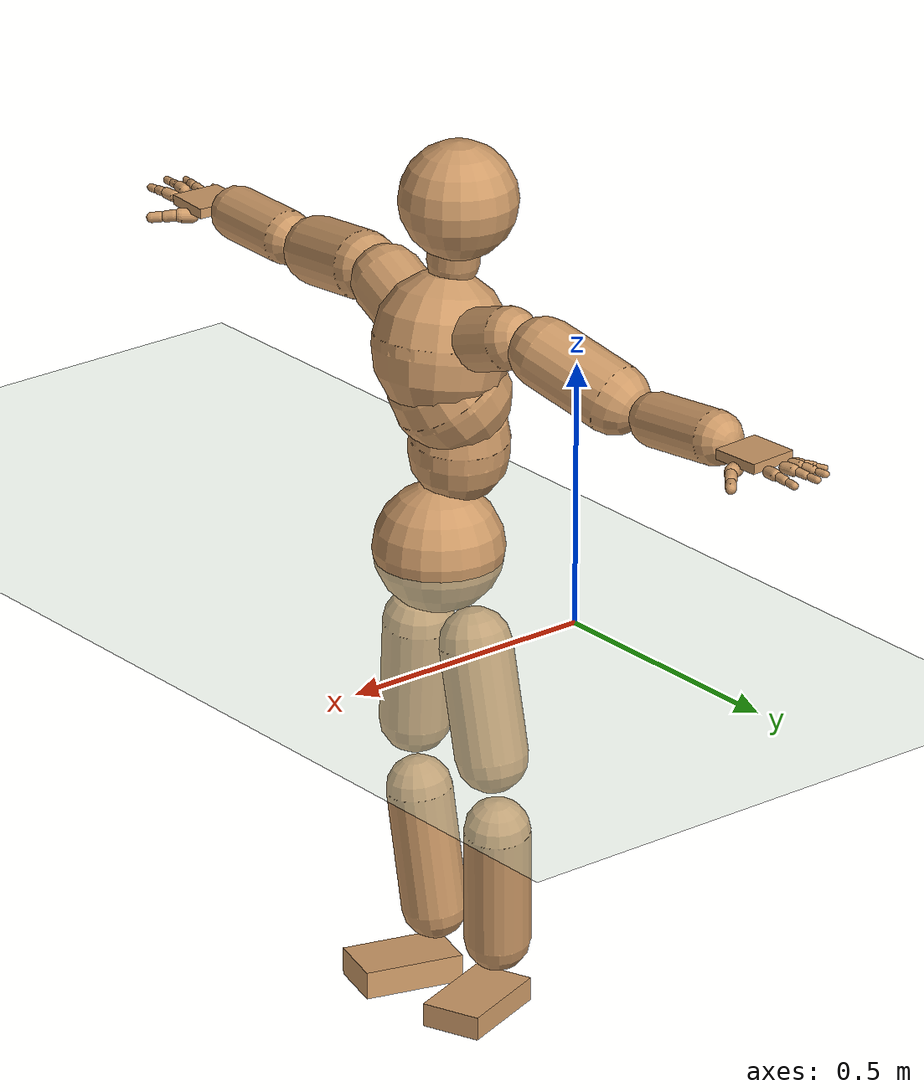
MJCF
<mujoco model="humanoid">
  <compiler coordinate="local" angle="radian"/>
  <default>
    <joint damping="0.0" armature="0.01" stiffness="0.0" limited="true"/>
    <geom conaffinity="1" condim="3" contype="7" margin="0.001" rgba="0.8 0.6 .4 1"/>
  </default>
  <asset>
    <texture type="skybox" builtin="gradient" rgb1=".4 .5 .6" rgb2="0 0 0" width="100" height="100"/>
    <texture builtin="flat" height="1278" mark="cross" markrgb="1 1 1" name="texgeom" random="0.01" rgb1="0.8 0.6 0.4" rgb2="0.8 0.6 0.4" type="cube" width="127"/>
    <texture builtin="checker" height="100" name="texplane" rgb1="0 0 0" rgb2="0.8 0.8 0.8" type="2d" width="100"/>
    <material name="MatPlane" reflectance="0.5" shininess="1" specular="1" texrepeat="60 60" texture="texplane"/>
    <material name="geom" texture="texgeom" texuniform="true"/>
  </asset>
  <worldbody>
    <light cutoff="100" diffuse="1 1 1" dir="-0 0 -1.3" directional="true" exponent="1" pos="0 0 1.3" specular=".1 .1 .1"/>
    <geom conaffinity="1" condim="3" name="floor" pos="0 0 0" rgba="0.8 0.9 0.8 1" size="100 100 .2" type="plane" material="MatPlane"/>
    <body name="Pelvis" pos="0.0019 -0.3915 0.019">
      <freejoint name="Pelvis"/>
      <geom type="sphere" contype="1" conaffinity="1" density="500" size="0.1237" pos="0.0000 0.0000 0.0000" name="Pelvis"/>
      <body name="L_Hip" pos="-0.02 0.0669 -0.1015">
        <joint name="L_Hip_x" type="hinge" pos="0 0 0" axis="1 0 0" stiffness="800" damping="80" armature="0.02" range="-180.0000 180.0000"/>
        <joint name="L_Hip_y" type="hinge" pos="0 0 0" axis="0 1 0" stiffness="800" damping="80" armature="0.02" range="-180.0000 180.0000"/>
        <joint name="L_Hip_z" type="hinge" pos="0 0 0" axis="0 0 1" stiffness="800" damping="80" armature="0.02" range="-180.0000 180.0000"/>
        <geom type="capsule" contype="1" conaffinity="1" density="500" fromto="-0.0023 0.0129 -0.0723 -0.0091 0.0518 -0.2891" size="0.0686" name="L_Hip"/>
        <body name="L_Knee" pos="-0.0113 0.0647 -0.3614">
          <joint name="L_Knee_x" type="hinge" pos="0 0 0" axis="1 0 0" stiffness="800" damping="80" armature="0.02" range="-180.0000 180.0000"/>
          <joint name="L_Knee_y" type="hinge" pos="0 0 0" axis="0 1 0" stiffness="800" damping="80" armature="0.02" range="-180.0000 180.0000"/>
          <joint name="L_Knee_z" type="hinge" pos="0 0 0" axis="0 0 1" stiffness="800" damping="80" armature="0.02" range="-180.0000 180.0000"/>
          <geom type="capsule" contype="1" conaffinity="1" density="500" fromto="-0.0090 -0.0107 -0.0805 -0.0361 -0.0430 -0.3222" size="0.063" name="L_Knee"/>
          <body name="L_Ankle" pos="-0.0452 -0.0537 -0.4027">
            <joint name="L_Ankle_x" type="hinge" pos="0 0 0" axis="1 0 0" stiffness="800" damping="80" armature="0.02" range="-180.0000 180.0000"/>
            <joint name="L_Ankle_y" type="hinge" pos="0 0 0" axis="0 1 0" stiffness="800" damping="80" armature="0.02" range="-180.0000 180.0000"/>
            <joint name="L_Ankle_z" type="hinge" pos="0 0 0" axis="0 0 1" stiffness="800" damping="80" armature="0.02" range="-180.0000 180.0000"/>
            <geom type="box" contype="1" conaffinity="1" density="500" pos="0.0695 0.0260 -0.0295" size="0.0974 0.0585 0.0229" quat="0.9841 0.0000 0.0000 0.1778" name="L_Ankle"/>
            <body name="L_Toe" pos="0.1389 0.0519 -0.0591">
              <joint name="L_Toe_x" type="hinge" pos="0 0 0" axis="1 0 0" stiffness="500" damping="50" armature="0.02" range="-180.0000 180.0000"/>
              <joint name="L_Toe_y" type="hinge" pos="0 0 0" axis="0 1 0" stiffness="500" damping="50" armature="0.02" range="-180.0000 180.0000"/>
              <joint name="L_Toe_z" type="hinge" pos="0 0 0" axis="0 0 1" stiffness="500" damping="50" armature="0.02" range="-180.0000 180.0000"/>
              <geom type="box" contype="1" conaffinity="1" density="500" pos="0.0000 0.0000 0.0300" size="0.0011 0.0027 0.0012" quat="0.9834 0.0000 0.0000 0.1817" name="L_Toe"/>
            </body>
          </body>
        </body>
      </body>
      <body name="R_Hip" pos="-0.0111 -0.0692 -0.1129">
        <joint name="R_Hip_x" type="hinge" pos="0 0 0" axis="1 0 0" stiffness="800" damping="80" armature="0.02" range="-180.0000 180.0000"/>
        <joint name="R_Hip_y" type="hinge" pos="0 0 0" axis="0 1 0" stiffness="800" damping="80" armature="0.02" range="-180.0000 180.0000"/>
        <joint name="R_Hip_z" type="hinge" pos="0 0 0" axis="0 0 1" stiffness="800" damping="80" armature="0.02" range="-180.0000 180.0000"/>
        <geom type="capsule" contype="1" conaffinity="1" density="500" fromto="-0.0041 -0.0092 -0.0690 -0.0165 -0.0367 -0.2761" size="0.0686" name="R_Hip"/>
        <body name="R_Knee" pos="-0.0207 -0.0459 -0.3451">
          <joint name="R_Knee_x" type="hinge" pos="0 0 0" axis="1 0 0" stiffness="800" damping="80" armature="0.02" range="-180.0000 180.0000"/>
          <joint name="R_Knee_y" type="hinge" pos="0 0 0" axis="0 1 0" stiffness="800" damping="80" armature="0.02" range="-180.0000 180.0000"/>
          <joint name="R_Knee_z" type="hinge" pos="0 0 0" axis="0 0 1" stiffness="800" damping="80" armature="0.02" range="-180.0000 180.0000"/>
          <geom type="capsule" contype="1" conaffinity="1" density="500" fromto="-0.0089 0.0039 -0.0830 -0.0355 0.0156 -0.3319" size="0.0631" name="R_Knee"/>
          <body name="R_Ankle" pos="-0.0444 0.0195 -0.4149">
            <joint name="R_Ankle_x" type="hinge" pos="0 0 0" axis="1 0 0" stiffness="800" damping="80" armature="0.02" range="-180.0000 180.0000"/>
            <joint name="R_Ankle_y" type="hinge" pos="0 0 0" axis="0 1 0" stiffness="800" damping="80" armature="0.02" range="-180.0000 180.0000"/>
            <joint name="R_Ankle_z" type="hinge" pos="0 0 0" axis="0 0 1" stiffness="800" damping="80" armature="0.02" range="-180.0000 180.0000"/>
            <geom type="box" contype="1" conaffinity="1" density="500" pos="0.0731 -0.0203 -0.0288" size="0.0974 0.0585 0.027" quat="0.9908 0.0000 0.0000 -0.1350" name="R_Ankle"/>
            <body name="R_Toe" pos="0.1461 -0.0406 -0.0575">
              <joint name="R_Toe_x" type="hinge" pos="0 0 0" axis="1 0 0" stiffness="500" damping="50" armature="0.02" range="-180.0000 180.0000"/>
              <joint name="R_Toe_y" type="hinge" pos="0 0 0" axis="0 1 0" stiffness="500" damping="50" armature="0.02" range="-180.0000 180.0000"/>
              <joint name="R_Toe_z" type="hinge" pos="0 0 0" axis="0 0 1" stiffness="500" damping="50" armature="0.02" range="-180.0000 180.0000"/>
              <geom type="box" contype="1" conaffinity="1" density="500" pos="0.0000 0.0000 0.0251" size="0.0011 0.0027 0.0012" quat="0.9919 0.0000 0.0000 -0.1270" name="R_Toe"/>
            </body>
          </body>
        </body>
      </body>
      <body name="Torso" pos="-0.0463 -0.0017 0.1141">
        <joint name="Torso_x" type="hinge" pos="0 0 0" axis="1 0 0" stiffness="1000" damping="100" armature="0.02" range="-180.0000 180.0000"/>
        <joint name="Torso_y" type="hinge" pos="0 0 0" axis="0 1 0" stiffness="1000" damping="100" armature="0.02" range="-180.0000 180.0000"/>
        <joint name="Torso_z" type="hinge" pos="0 0 0" axis="0 0 1" stiffness="1000" damping="100" armature="0.02" range="-180.0000 180.0000"/>
        <geom type="capsule" contype="1" conaffinity="1" density="500" fromto="0.0050 0.0107 0.0963 0.0033 0.0071 0.0642" size="0.0945" name="Torso"/>
        <body name="Spine" pos="0.0083 0.0178 0.1606">
          <joint name="Spine_x" type="hinge" pos="0 0 0" axis="1 0 0" stiffness="1000" damping="100" armature="0.02" range="-180.0000 180.0000"/>
          <joint name="Spine_y" type="hinge" pos="0 0 0" axis="0 1 0" stiffness="1000" damping="100" armature="0.02" range="-180.0000 180.0000"/>
          <joint name="Spine_z" type="hinge" pos="0 0 0" axis="0 0 1" stiffness="1000" damping="100" armature="0.02" range="-180.0000 180.0000"/>
          <geom type="capsule" contype="1" conaffinity="1" density="500" fromto="0.0236 -0.0083 0.0372 0.0157 -0.0055 0.0248" size="0.1114" name="Spine"/>
          <body name="Chest" pos="0.0393 -0.0138 0.062">
            <joint name="Chest_x" type="hinge" pos="0 0 0" axis="1 0 0" stiffness="1000" damping="100" armature="0.02" range="-180.0000 180.0000"/>
            <joint name="Chest_y" type="hinge" pos="0 0 0" axis="0 1 0" stiffness="1000" damping="100" armature="0.02" range="-180.0000 180.0000"/>
            <joint name="Chest_z" type="hinge" pos="0 0 0" axis="0 0 1" stiffness="1000" damping="100" armature="0.02" range="-180.0000 180.0000"/>
            <geom type="capsule" contype="1" conaffinity="1" density="500" fromto="-0.0116 -0.0050 0.0687 -0.0077 -0.0033 0.0458" size="0.1279" name="Chest"/>
            <body name="Neck" pos="-0.0424 -0.0146 0.1789">
              <joint name="Neck_x" type="hinge" pos="0 0 0" axis="1 0 0" stiffness="500" damping="50" armature="0.02" range="-180.0000 180.0000"/>
              <joint name="Neck_y" type="hinge" pos="0 0 0" axis="0 1 0" stiffness="500" damping="50" armature="0.02" range="-180.0000 180.0000"/>
              <joint name="Neck_z" type="hinge" pos="0 0 0" axis="0 0 1" stiffness="500" damping="50" armature="0.02" range="-180.0000 180.0000"/>
              <geom type="capsule" contype="1" conaffinity="1" density="500" fromto="0.0014 0.0056 0.0315 0.0055 0.0224 0.1262" size="0.049" name="Neck"/>
              <body name="Head" pos="0.0069 0.028 0.1577">
                <joint name="Head_x" type="hinge" pos="0 0 0" axis="1 0 0" stiffness="500" damping="50" armature="0.02" range="-180.0000 180.0000"/>
                <joint name="Head_y" type="hinge" pos="0 0 0" axis="0 1 0" stiffness="500" damping="50" armature="0.02" range="-180.0000 180.0000"/>
                <joint name="Head_z" type="hinge" pos="0 0 0" axis="0 0 1" stiffness="500" damping="50" armature="0.02" range="-180.0000 180.0000"/>
                <geom type="sphere" contype="1" conaffinity="1" density="500" size="0.1107" pos="0.0000 0.0000 0.0000" name="Head"/>
              </body>
            </body>
            <body name="L_Thorax" pos="-0.0073 0.048 0.0816">
              <joint name="L_Thorax_x" type="hinge" pos="0 0 0" axis="1 0 0" stiffness="500" damping="50" armature="0.02" range="-180.0000 180.0000"/>
              <joint name="L_Thorax_y" type="hinge" pos="0 0 0" axis="0 1 0" stiffness="500" damping="50" armature="0.02" range="-180.0000 180.0000"/>
              <joint name="L_Thorax_z" type="hinge" pos="0 0 0" axis="0 0 1" stiffness="500" damping="50" armature="0.02" range="-180.0000 180.0000"/>
              <geom type="capsule" contype="1" conaffinity="1" density="500" fromto="-0.0027 0.0329 0.0108 -0.0107 0.1314 0.0432" size="0.0591" name="L_Thorax"/>
              <body name="L_Shoulder" pos="-0.0134 0.1643 0.0539">
                <joint name="L_Shoulder_x" type="hinge" pos="0 0 0" axis="1 0 0" stiffness="500" damping="50" armature="0.02" range="-180.0000 180.0000"/>
                <joint name="L_Shoulder_y" type="hinge" pos="0 0 0" axis="0 1 0" stiffness="500" damping="50" armature="0.02" range="-180.0000 180.0000"/>
                <joint name="L_Shoulder_z" type="hinge" pos="0 0 0" axis="0 0 1" stiffness="500" damping="50" armature="0.02" range="-180.0000 180.0000"/>
                <geom type="capsule" contype="1" conaffinity="1" density="500" fromto="-0.0118 0.0508 -0.0162 -0.0471 0.2033 -0.0646" size="0.0663" name="L_Shoulder"/>
                <body name="L_Elbow" pos="-0.0589 0.2541 -0.0808">
                  <joint name="L_Elbow_x" type="hinge" pos="0 0 0" axis="1 0 0" stiffness="500" damping="50" armature="0.02" range="-720.0000 720.0000"/>
                  <joint name="L_Elbow_y" type="hinge" pos="0 0 0" axis="0 1 0" stiffness="500" damping="50" armature="0.02" range="-720.0000 720.0000"/>
                  <joint name="L_Elbow_z" type="hinge" pos="0 0 0" axis="0 0 1" stiffness="500" damping="50" armature="0.02" range="-720.0000 720.0000"/>
                  <geom type="capsule" contype="1" conaffinity="1" density="500" fromto="0.0011 0.0541 0.0065 0.0045 0.2164 0.0260" size="0.0508" name="L_Elbow"/>
                  <body name="L_Wrist" pos="0.0057 0.2705 0.0325">
                    <joint name="L_Wrist_x" type="hinge" pos="0 0 0" axis="1 0 0" stiffness="300" damping="30" armature="0.02" range="-180.0000 180.0000"/>
                    <joint name="L_Wrist_y" type="hinge" pos="0 0 0" axis="0 1 0" stiffness="300" damping="30" armature="0.02" range="-180.0000 180.0000"/>
                    <joint name="L_Wrist_z" type="hinge" pos="0 0 0" axis="0 0 1" stiffness="300" damping="30" armature="0.02" range="-180.0000 180.0000"/>
                    <geom type="box" contype="1" conaffinity="1" density="500" pos="-0.0032 0.0476 -0.0061" size="0.0475 0.0478 0.0095" quat="0.7307 0.0000 0.0000 -0.6827" name="L_Wrist"/>
                    <body name="L_Index1" pos="0.024 0.112 -0.0086">
                      <joint name="L_Index1_x" type="hinge" pos="0 0 0" axis="1 0 0" stiffness="100" damping="10" armature="0.02" range="-180.0000 180.0000"/>
                      <joint name="L_Index1_y" type="hinge" pos="0 0 0" axis="0 1 0" stiffness="100" damping="10" armature="0.02" range="-180.0000 180.0000"/>
                      <joint name="L_Index1_z" type="hinge" pos="0 0 0" axis="0 0 1" stiffness="100" damping="10" armature="0.02" range="-180.0000 180.0000"/>
                      <geom type="capsule" contype="1" conaffinity="1" density="500" fromto="0.0008 0.0068 0.0005 0.0031 0.0274 0.0018" size="0.0108" name="L_Index1"/>
                      <body name="L_Index2" pos="0.0038 0.0342 0.0023">
                        <joint name="L_Index2_x" type="hinge" pos="0 0 0" axis="1 0 0" stiffness="100" damping="10" armature="0.02" range="-180.0000 180.0000"/>
                        <joint name="L_Index2_y" type="hinge" pos="0 0 0" axis="0 1 0" stiffness="100" damping="10" armature="0.02" range="-180.0000 180.0000"/>
                        <joint name="L_Index2_z" type="hinge" pos="0 0 0" axis="0 0 1" stiffness="100" damping="10" armature="0.02" range="-180.0000 180.0000"/>
                        <geom type="capsule" contype="1" conaffinity="1" density="500" fromto="-0.0001 0.0048 -0.0005 -0.0003 0.0192 -0.0021" size="0.0085" name="L_Index2"/>
                        <body name="L_Index3" pos="-0.0004 0.024 -0.0027">
                          <joint name="L_Index3_x" type="hinge" pos="0 0 0" axis="1 0 0" stiffness="100" damping="10" armature="0.02" range="-180.0000 180.0000"/>
                          <joint name="L_Index3_y" type="hinge" pos="0 0 0" axis="0 1 0" stiffness="100" damping="10" armature="0.02" range="-180.0000 180.0000"/>
                          <joint name="L_Index3_z" type="hinge" pos="0 0 0" axis="0 0 1" stiffness="100" damping="10" armature="0.02" range="-180.0000 180.0000"/>
                          <geom type="capsule" contype="1" conaffinity="1" density="500" fromto="0.0003 0.0052 -0.0001 0.0013 0.0208 -0.0005" size="0.0072" name="L_Index3"/>
                        </body>
                      </body>
                    </body>
                    <body name="L_Middle1" pos="-0.0043 0.1206 -0.0051">
                      <joint name="L_Middle1_x" type="hinge" pos="0 0 0" axis="1 0 0" stiffness="100" damping="10" armature="0.02" range="-180.0000 180.0000"/>
                      <joint name="L_Middle1_y" type="hinge" pos="0 0 0" axis="0 1 0" stiffness="100" damping="10" armature="0.02" range="-180.0000 180.0000"/>
                      <joint name="L_Middle1_z" type="hinge" pos="0 0 0" axis="0 0 1" stiffness="100" damping="10" armature="0.02" range="-180.0000 180.0000"/>
                      <geom type="capsule" contype="1" conaffinity="1" density="500" fromto="-0.0010 0.0065 0.0002 -0.0039 0.0261 0.0007" size="0.011" name="L_Middle1"/>
                      <body name="L_Middle2" pos="-0.0049 0.0327 0.0009">
                        <joint name="L_Middle2_x" type="hinge" pos="0 0 0" axis="1 0 0" stiffness="100" damping="10" armature="0.02" range="-180.0000 180.0000"/>
                        <joint name="L_Middle2_y" type="hinge" pos="0 0 0" axis="0 1 0" stiffness="100" damping="10" armature="0.02" range="-180.0000 180.0000"/>
                        <joint name="L_Middle2_z" type="hinge" pos="0 0 0" axis="0 0 1" stiffness="100" damping="10" armature="0.02" range="-180.0000 180.0000"/>
                        <geom type="capsule" contype="1" conaffinity="1" density="500" fromto="-0.0009 0.0050 -0.0005 -0.0037 0.0199 -0.0021" size="0.008" name="L_Middle2"/>
                        <body name="L_Middle3" pos="-0.0047 0.0249 -0.0026">
                          <joint name="L_Middle3_x" type="hinge" pos="0 0 0" axis="1 0 0" stiffness="100" damping="10" armature="0.02" range="-180.0000 180.0000"/>
                          <joint name="L_Middle3_y" type="hinge" pos="0 0 0" axis="0 1 0" stiffness="100" damping="10" armature="0.02" range="-180.0000 180.0000"/>
                          <joint name="L_Middle3_z" type="hinge" pos="0 0 0" axis="0 0 1" stiffness="100" damping="10" armature="0.02" range="-180.0000 180.0000"/>
                          <geom type="capsule" contype="1" conaffinity="1" density="500" fromto="-0.0005 0.0054 -0.0001 -0.0021 0.0215 -0.0005" size="0.0069" name="L_Middle3"/>
                        </body>
                      </body>
                    </body>
                    <body name="L_Pinky1" pos="-0.0515 0.0927 -0.0159">
                      <joint name="L_Pinky1_x" type="hinge" pos="0 0 0" axis="1 0 0" stiffness="100" damping="10" armature="0.02" range="-180.0000 180.0000"/>
                      <joint name="L_Pinky1_y" type="hinge" pos="0 0 0" axis="0 1 0" stiffness="100" damping="10" armature="0.02" range="-180.0000 180.0000"/>
                      <joint name="L_Pinky1_z" type="hinge" pos="0 0 0" axis="0 0 1" stiffness="100" damping="10" armature="0.02" range="-180.0000 180.0000"/>
                      <geom type="capsule" contype="1" conaffinity="1" density="500" fromto="-0.0025 0.0036 -0.0004 -0.0101 0.0143 -0.0016" size="0.0076" name="L_Pinky1"/>
                      <body name="L_Pinky2" pos="-0.0126 0.0179 -0.002">
                        <joint name="L_Pinky2_x" type="hinge" pos="0 0 0" axis="1 0 0" stiffness="100" damping="10" armature="0.02" range="-180.0000 180.0000"/>
                        <joint name="L_Pinky2_y" type="hinge" pos="0 0 0" axis="0 1 0" stiffness="100" damping="10" armature="0.02" range="-180.0000 180.0000"/>
                        <joint name="L_Pinky2_z" type="hinge" pos="0 0 0" axis="0 0 1" stiffness="100" damping="10" armature="0.02" range="-180.0000 180.0000"/>
                        <geom type="capsule" contype="1" conaffinity="1" density="500" fromto="-0.0023 0.0035 -0.0005 -0.0092 0.0139 -0.0020" size="0.0072" name="L_Pinky2"/>
                        <body name="L_Pinky3" pos="-0.0115 0.0173 -0.0025">
                          <joint name="L_Pinky3_x" type="hinge" pos="0 0 0" axis="1 0 0" stiffness="100" damping="10" armature="0.02" range="-180.0000 180.0000"/>
                          <joint name="L_Pinky3_y" type="hinge" pos="0 0 0" axis="0 1 0" stiffness="100" damping="10" armature="0.02" range="-180.0000 180.0000"/>
                          <joint name="L_Pinky3_z" type="hinge" pos="0 0 0" axis="0 0 1" stiffness="100" damping="10" armature="0.02" range="-180.0000 180.0000"/>
                          <geom type="capsule" contype="1" conaffinity="1" density="500" fromto="-0.0019 0.0039 -0.0001 -0.0076 0.0155 -0.0004" size="0.0054" name="L_Pinky3"/>
                        </body>
                      </body>
                    </body>
                    <body name="L_Ring1" pos="-0.0325 0.1076 -0.0088">
                      <joint name="L_Ring1_x" type="hinge" pos="0 0 0" axis="1 0 0" stiffness="100" damping="10" armature="0.02" range="-180.0000 180.0000"/>
                      <joint name="L_Ring1_y" type="hinge" pos="0 0 0" axis="0 1 0" stiffness="100" damping="10" armature="0.02" range="-180.0000 180.0000"/>
                      <joint name="L_Ring1_z" type="hinge" pos="0 0 0" axis="0 0 1" stiffness="100" damping="10" armature="0.02" range="-180.0000 180.0000"/>
                      <geom type="capsule" contype="1" conaffinity="1" density="500" fromto="-0.0011 0.0062 0.0002 -0.0042 0.0247 0.0009" size="0.0093" name="L_Ring1"/>
                      <body name="L_Ring2" pos="-0.0053 0.0308 0.0012">
                        <joint name="L_Ring2_x" type="hinge" pos="0 0 0" axis="1 0 0" stiffness="100" damping="10" armature="0.02" range="-180.0000 180.0000"/>
                        <joint name="L_Ring2_y" type="hinge" pos="0 0 0" axis="0 1 0" stiffness="100" damping="10" armature="0.02" range="-180.0000 180.0000"/>
                        <joint name="L_Ring2_z" type="hinge" pos="0 0 0" axis="0 0 1" stiffness="100" damping="10" armature="0.02" range="-180.0000 180.0000"/>
                        <geom type="capsule" contype="1" conaffinity="1" density="500" fromto="-0.0014 0.0049 -0.0005 -0.0057 0.0197 -0.0020" size="0.0085" name="L_Ring2"/>
                        <body name="L_Ring3" pos="-0.0071 0.0246 -0.0025">
                          <joint name="L_Ring3_x" type="hinge" pos="0 0 0" axis="1 0 0" stiffness="100" damping="10" armature="0.02" range="-180.0000 180.0000"/>
                          <joint name="L_Ring3_y" type="hinge" pos="0 0 0" axis="0 1 0" stiffness="100" damping="10" armature="0.02" range="-180.0000 180.0000"/>
                          <joint name="L_Ring3_z" type="hinge" pos="0 0 0" axis="0 0 1" stiffness="100" damping="10" armature="0.02" range="-180.0000 180.0000"/>
                          <geom type="capsule" contype="1" conaffinity="1" density="500" fromto="-0.0010 0.0053 -0.0001 -0.0041 0.0213 -0.0004" size="0.0065" name="L_Ring3"/>
                        </body>
                      </body>
                    </body>
                    <body name="L_Thumb1" pos="0.0319 0.0433 -0.0224">
                      <joint name="L_Thumb1_x" type="hinge" pos="0 0 0" axis="1 0 0" stiffness="100" damping="10" armature="0.02" range="-180.0000 180.0000"/>
                      <joint name="L_Thumb1_y" type="hinge" pos="0 0 0" axis="0 1 0" stiffness="100" damping="10" armature="0.02" range="-180.0000 180.0000"/>
                      <joint name="L_Thumb1_z" type="hinge" pos="0 0 0" axis="0 0 1" stiffness="100" damping="10" armature="0.02" range="-180.0000 180.0000"/>
                      <geom type="capsule" contype="1" conaffinity="1" density="500" fromto="0.0059 0.0035 0.0005 0.0235 0.0139 0.0021" size="0.0143" name="L_Thumb1"/>
                      <body name="L_Thumb2" pos="0.0294 0.0174 0.0026">
                        <joint name="L_Thumb2_x" type="hinge" pos="0 0 0" axis="1 0 0" stiffness="100" damping="10" armature="0.02" range="-180.0000 180.0000"/>
                        <joint name="L_Thumb2_y" type="hinge" pos="0 0 0" axis="0 1 0" stiffness="100" damping="10" armature="0.02" range="-180.0000 180.0000"/>
                        <joint name="L_Thumb2_z" type="hinge" pos="0 0 0" axis="0 0 1" stiffness="100" damping="10" armature="0.02" range="-180.0000 180.0000"/>
                        <geom type="capsule" contype="1" conaffinity="1" density="500" fromto="0.0036 0.0042 -0.0010 0.0142 0.0169 -0.0040" size="0.0111" name="L_Thumb2"/>
                        <body name="L_Thumb3" pos="0.0178 0.0212 -0.005">
                          <joint name="L_Thumb3_x" type="hinge" pos="0 0 0" axis="1 0 0" stiffness="100" damping="10" armature="0.02" range="-180.0000 180.0000"/>
                          <joint name="L_Thumb3_y" type="hinge" pos="0 0 0" axis="0 1 0" stiffness="100" damping="10" armature="0.02" range="-180.0000 180.0000"/>
                          <joint name="L_Thumb3_z" type="hinge" pos="0 0 0" axis="0 0 1" stiffness="100" damping="10" armature="0.02" range="-180.0000 180.0000"/>
                          <geom type="capsule" contype="1" conaffinity="1" density="500" fromto="0.0040 0.0046 -0.0006 0.0158 0.0185 -0.0024" size="0.0099" name="L_Thumb3"/>
                        </body>
                      </body>
                    </body>
                  </body>
                </body>
              </body>
            </body>
            <body name="R_Thorax" pos="-0.0083 -0.0583 0.0828">
              <joint name="R_Thorax_x" type="hinge" pos="0 0 0" axis="1 0 0" stiffness="500" damping="50" armature="0.02" range="-180.0000 180.0000"/>
              <joint name="R_Thorax_y" type="hinge" pos="0 0 0" axis="0 1 0" stiffness="500" damping="50" armature="0.02" range="-180.0000 180.0000"/>
              <joint name="R_Thorax_z" type="hinge" pos="0 0 0" axis="0 0 1" stiffness="500" damping="50" armature="0.02" range="-180.0000 180.0000"/>
              <geom type="capsule" contype="1" conaffinity="1" density="500" fromto="-0.0039 -0.0299 0.0104 -0.0157 -0.1196 0.0418" size="0.0695" name="R_Thorax"/>
              <body name="R_Shoulder" pos="-0.0196 -0.1495 0.0522">
                <joint name="R_Shoulder_x" type="hinge" pos="0 0 0" axis="1 0 0" stiffness="500" damping="50" armature="0.02" range="-180.0000 180.0000"/>
                <joint name="R_Shoulder_y" type="hinge" pos="0 0 0" axis="0 1 0" stiffness="500" damping="50" armature="0.02" range="-180.0000 180.0000"/>
                <joint name="R_Shoulder_z" type="hinge" pos="0 0 0" axis="0 0 1" stiffness="500" damping="50" armature="0.02" range="-180.0000 180.0000"/>
                <geom type="capsule" contype="1" conaffinity="1" density="500" fromto="-0.0071 -0.0550 -0.0087 -0.0285 -0.2200 -0.0346" size="0.0655" name="R_Shoulder"/>
                <body name="R_Elbow" pos="-0.0356 -0.275 -0.0433">
                  <joint name="R_Elbow_x" type="hinge" pos="0 0 0" axis="1 0 0" stiffness="500" damping="50" armature="0.02" range="-720.0000 720.0000"/>
                  <joint name="R_Elbow_y" type="hinge" pos="0 0 0" axis="0 1 0" stiffness="500" damping="50" armature="0.02" range="-720.0000 720.0000"/>
                  <joint name="R_Elbow_z" type="hinge" pos="0 0 0" axis="0 0 1" stiffness="500" damping="50" armature="0.02" range="-720.0000 720.0000"/>
                  <geom type="capsule" contype="1" conaffinity="1" density="500" fromto="-0.0019 -0.0526 -0.0000 -0.0077 -0.2104 -0.0001" size="0.052" name="R_Elbow"/>
                  <body name="R_Wrist" pos="-0.0096 -0.2631 -0.0001">
                    <joint name="R_Wrist_x" type="hinge" pos="0 0 0" axis="1 0 0" stiffness="300" damping="30" armature="0.02" range="-180.0000 180.0000"/>
                    <joint name="R_Wrist_y" type="hinge" pos="0 0 0" axis="0 1 0" stiffness="300" damping="30" armature="0.02" range="-180.0000 180.0000"/>
                    <joint name="R_Wrist_z" type="hinge" pos="0 0 0" axis="0 0 1" stiffness="300" damping="30" armature="0.02" range="-180.0000 180.0000"/>
                    <geom type="box" contype="1" conaffinity="1" density="500" pos="-0.0037 -0.0472 -0.0082" size="0.0475 0.049 0.0097" quat="0.7343 0.0000 0.0000 0.6789" name="R_Wrist"/>
                    <body name="R_Index1" pos="0.0231 -0.1112 -0.0128">
                      <joint name="R_Index1_x" type="hinge" pos="0 0 0" axis="1 0 0" stiffness="100" damping="10" armature="0.02" range="-180.0000 180.0000"/>
                      <joint name="R_Index1_y" type="hinge" pos="0 0 0" axis="0 1 0" stiffness="100" damping="10" armature="0.02" range="-180.0000 180.0000"/>
                      <joint name="R_Index1_z" type="hinge" pos="0 0 0" axis="0 0 1" stiffness="100" damping="10" armature="0.02" range="-180.0000 180.0000"/>
                      <geom type="capsule" contype="1" conaffinity="1" density="500" fromto="0.0008 -0.0068 0.0005 0.0031 -0.0274 0.0018" size="0.0108" name="R_Index1"/>
                      <body name="R_Index2" pos="0.0038 -0.0342 0.0023">
                        <joint name="R_Index2_x" type="hinge" pos="0 0 0" axis="1 0 0" stiffness="100" damping="10" armature="0.02" range="-180.0000 180.0000"/>
                        <joint name="R_Index2_y" type="hinge" pos="0 0 0" axis="0 1 0" stiffness="100" damping="10" armature="0.02" range="-180.0000 180.0000"/>
                        <joint name="R_Index2_z" type="hinge" pos="0 0 0" axis="0 0 1" stiffness="100" damping="10" armature="0.02" range="-180.0000 180.0000"/>
                        <geom type="capsule" contype="1" conaffinity="1" density="500" fromto="-0.0001 -0.0048 -0.0005 -0.0003 -0.0192 -0.0021" size="0.0085" name="R_Index2"/>
                        <body name="R_Index3" pos="-0.0004 -0.024 -0.0027">
                          <joint name="R_Index3_x" type="hinge" pos="0 0 0" axis="1 0 0" stiffness="100" damping="10" armature="0.02" range="-180.0000 180.0000"/>
                          <joint name="R_Index3_y" type="hinge" pos="0 0 0" axis="0 1 0" stiffness="100" damping="10" armature="0.02" range="-180.0000 180.0000"/>
                          <joint name="R_Index3_z" type="hinge" pos="0 0 0" axis="0 0 1" stiffness="100" damping="10" armature="0.02" range="-180.0000 180.0000"/>
                          <geom type="capsule" contype="1" conaffinity="1" density="500" fromto="0.0003 -0.0044 -0.0001 0.0013 -0.0176 -0.0005" size="0.0075" name="R_Index3"/>
                        </body>
                      </body>
                    </body>
                    <body name="R_Middle1" pos="-0.0053 -0.1198 -0.0093">
                      <joint name="R_Middle1_x" type="hinge" pos="0 0 0" axis="1 0 0" stiffness="100" damping="10" armature="0.02" range="-180.0000 180.0000"/>
                      <joint name="R_Middle1_y" type="hinge" pos="0 0 0" axis="0 1 0" stiffness="100" damping="10" armature="0.02" range="-180.0000 180.0000"/>
                      <joint name="R_Middle1_z" type="hinge" pos="0 0 0" axis="0 0 1" stiffness="100" damping="10" armature="0.02" range="-180.0000 180.0000"/>
                      <geom type="capsule" contype="1" conaffinity="1" density="500" fromto="-0.0010 -0.0065 0.0002 -0.0039 -0.0261 0.0007" size="0.011" name="R_Middle1"/>
                      <body name="R_Middle2" pos="-0.0049 -0.0327 0.0009">
                        <joint name="R_Middle2_x" type="hinge" pos="0 0 0" axis="1 0 0" stiffness="100" damping="10" armature="0.02" range="-180.0000 180.0000"/>
                        <joint name="R_Middle2_y" type="hinge" pos="0 0 0" axis="0 1 0" stiffness="100" damping="10" armature="0.02" range="-180.0000 180.0000"/>
                        <joint name="R_Middle2_z" type="hinge" pos="0 0 0" axis="0 0 1" stiffness="100" damping="10" armature="0.02" range="-180.0000 180.0000"/>
                        <geom type="capsule" contype="1" conaffinity="1" density="500" fromto="-0.0009 -0.0050 -0.0005 -0.0037 -0.0199 -0.0021" size="0.008" name="R_Middle2"/>
                        <body name="R_Middle3" pos="-0.0047 -0.0249 -0.0026">
                          <joint name="R_Middle3_x" type="hinge" pos="0 0 0" axis="1 0 0" stiffness="100" damping="10" armature="0.02" range="-180.0000 180.0000"/>
                          <joint name="R_Middle3_y" type="hinge" pos="0 0 0" axis="0 1 0" stiffness="100" damping="10" armature="0.02" range="-180.0000 180.0000"/>
                          <joint name="R_Middle3_z" type="hinge" pos="0 0 0" axis="0 0 1" stiffness="100" damping="10" armature="0.02" range="-180.0000 180.0000"/>
                          <geom type="capsule" contype="1" conaffinity="1" density="500" fromto="-0.0005 -0.0046 -0.0001 -0.0021 -0.0183 -0.0005" size="0.0072" name="R_Middle3"/>
                        </body>
                      </body>
                    </body>
                    <body name="R_Pinky1" pos="-0.0524 -0.092 -0.0201">
                      <joint name="R_Pinky1_x" type="hinge" pos="0 0 0" axis="1 0 0" stiffness="100" damping="10" armature="0.02" range="-180.0000 180.0000"/>
                      <joint name="R_Pinky1_y" type="hinge" pos="0 0 0" axis="0 1 0" stiffness="100" damping="10" armature="0.02" range="-180.0000 180.0000"/>
                      <joint name="R_Pinky1_z" type="hinge" pos="0 0 0" axis="0 0 1" stiffness="100" damping="10" armature="0.02" range="-180.0000 180.0000"/>
                      <geom type="capsule" contype="1" conaffinity="1" density="500" fromto="-0.0025 -0.0036 -0.0004 -0.0101 -0.0143 -0.0016" size="0.0076" name="R_Pinky1"/>
                      <body name="R_Pinky2" pos="-0.0126 -0.0179 -0.002">
                        <joint name="R_Pinky2_x" type="hinge" pos="0 0 0" axis="1 0 0" stiffness="100" damping="10" armature="0.02" range="-180.0000 180.0000"/>
                        <joint name="R_Pinky2_y" type="hinge" pos="0 0 0" axis="0 1 0" stiffness="100" damping="10" armature="0.02" range="-180.0000 180.0000"/>
                        <joint name="R_Pinky2_z" type="hinge" pos="0 0 0" axis="0 0 1" stiffness="100" damping="10" armature="0.02" range="-180.0000 180.0000"/>
                        <geom type="capsule" contype="1" conaffinity="1" density="500" fromto="-0.0023 -0.0035 -0.0005 -0.0092 -0.0139 -0.0020" size="0.0072" name="R_Pinky2"/>
                        <body name="R_Pinky3" pos="-0.0115 -0.0173 -0.0025">
                          <joint name="R_Pinky3_x" type="hinge" pos="0 0 0" axis="1 0 0" stiffness="100" damping="10" armature="0.02" range="-180.0000 180.0000"/>
                          <joint name="R_Pinky3_y" type="hinge" pos="0 0 0" axis="0 1 0" stiffness="100" damping="10" armature="0.02" range="-180.0000 180.0000"/>
                          <joint name="R_Pinky3_z" type="hinge" pos="0 0 0" axis="0 0 1" stiffness="100" damping="10" armature="0.02" range="-180.0000 180.0000"/>
                          <geom type="capsule" contype="1" conaffinity="1" density="500" fromto="-0.0019 -0.0031 -0.0001 -0.0076 -0.0123 -0.0004" size="0.0056" name="R_Pinky3"/>
                        </body>
                      </body>
                    </body>
                    <body name="R_Ring1" pos="-0.0334 -0.1068 -0.013">
                      <joint name="R_Ring1_x" type="hinge" pos="0 0 0" axis="1 0 0" stiffness="100" damping="10" armature="0.02" range="-180.0000 180.0000"/>
                      <joint name="R_Ring1_y" type="hinge" pos="0 0 0" axis="0 1 0" stiffness="100" damping="10" armature="0.02" range="-180.0000 180.0000"/>
                      <joint name="R_Ring1_z" type="hinge" pos="0 0 0" axis="0 0 1" stiffness="100" damping="10" armature="0.02" range="-180.0000 180.0000"/>
                      <geom type="capsule" contype="1" conaffinity="1" density="500" fromto="-0.0011 -0.0062 0.0002 -0.0042 -0.0247 0.0009" size="0.0093" name="R_Ring1"/>
                      <body name="R_Ring2" pos="-0.0053 -0.0308 0.0012">
                        <joint name="R_Ring2_x" type="hinge" pos="0 0 0" axis="1 0 0" stiffness="100" damping="10" armature="0.02" range="-180.0000 180.0000"/>
                        <joint name="R_Ring2_y" type="hinge" pos="0 0 0" axis="0 1 0" stiffness="100" damping="10" armature="0.02" range="-180.0000 180.0000"/>
                        <joint name="R_Ring2_z" type="hinge" pos="0 0 0" axis="0 0 1" stiffness="100" damping="10" armature="0.02" range="-180.0000 180.0000"/>
                        <geom type="capsule" contype="1" conaffinity="1" density="500" fromto="-0.0014 -0.0049 -0.0005 -0.0057 -0.0197 -0.0020" size="0.0085" name="R_Ring2"/>
                        <body name="R_Ring3" pos="-0.0071 -0.0246 -0.0025">
                          <joint name="R_Ring3_x" type="hinge" pos="0 0 0" axis="1 0 0" stiffness="100" damping="10" armature="0.02" range="-180.0000 180.0000"/>
                          <joint name="R_Ring3_y" type="hinge" pos="0 0 0" axis="0 1 0" stiffness="100" damping="10" armature="0.02" range="-180.0000 180.0000"/>
                          <joint name="R_Ring3_z" type="hinge" pos="0 0 0" axis="0 0 1" stiffness="100" damping="10" armature="0.02" range="-180.0000 180.0000"/>
                          <geom type="capsule" contype="1" conaffinity="1" density="500" fromto="-0.0010 -0.0045 -0.0001 -0.0041 -0.0181 -0.0004" size="0.0068" name="R_Ring3"/>
                        </body>
                      </body>
                    </body>
                    <body name="R_Thumb1" pos="0.0309 -0.0426 -0.0267">
                      <joint name="R_Thumb1_x" type="hinge" pos="0 0 0" axis="1 0 0" stiffness="100" damping="10" armature="0.02" range="-180.0000 180.0000"/>
                      <joint name="R_Thumb1_y" type="hinge" pos="0 0 0" axis="0 1 0" stiffness="100" damping="10" armature="0.02" range="-180.0000 180.0000"/>
                      <joint name="R_Thumb1_z" type="hinge" pos="0 0 0" axis="0 0 1" stiffness="100" damping="10" armature="0.02" range="-180.0000 180.0000"/>
                      <geom type="capsule" contype="1" conaffinity="1" density="500" fromto="0.0059 -0.0035 0.0005 0.0235 -0.0139 0.0021" size="0.0143" name="R_Thumb1"/>
                      <body name="R_Thumb2" pos="0.0294 -0.0174 0.0026">
                        <joint name="R_Thumb2_x" type="hinge" pos="0 0 0" axis="1 0 0" stiffness="100" damping="10" armature="0.02" range="-180.0000 180.0000"/>
                        <joint name="R_Thumb2_y" type="hinge" pos="0 0 0" axis="0 1 0" stiffness="100" damping="10" armature="0.02" range="-180.0000 180.0000"/>
                        <joint name="R_Thumb2_z" type="hinge" pos="0 0 0" axis="0 0 1" stiffness="100" damping="10" armature="0.02" range="-180.0000 180.0000"/>
                        <geom type="capsule" contype="1" conaffinity="1" density="500" fromto="0.0036 -0.0042 -0.0010 0.0142 -0.0169 -0.0040" size="0.0111" name="R_Thumb2"/>
                        <body name="R_Thumb3" pos="0.0178 -0.0212 -0.005">
                          <joint name="R_Thumb3_x" type="hinge" pos="0 0 0" axis="1 0 0" stiffness="100" damping="10" armature="0.02" range="-180.0000 180.0000"/>
                          <joint name="R_Thumb3_y" type="hinge" pos="0 0 0" axis="0 1 0" stiffness="100" damping="10" armature="0.02" range="-180.0000 180.0000"/>
                          <joint name="R_Thumb3_z" type="hinge" pos="0 0 0" axis="0 0 1" stiffness="100" damping="10" armature="0.02" range="-180.0000 180.0000"/>
                          <geom type="capsule" contype="1" conaffinity="1" density="500" fromto="0.0040 -0.0038 -0.0006 0.0158 -0.0153 -0.0024" size="0.0102" name="R_Thumb3"/>
                        </body>
                      </body>
                    </body>
                  </body>
                </body>
              </body>
            </body>
          </body>
        </body>
      </body>
    </body>
  </worldbody>
  <actuator>
    <motor name="L_Hip_x" joint="L_Hip_x" gear="500"/>
    <motor name="L_Hip_y" joint="L_Hip_y" gear="500"/>
    <motor name="L_Hip_z" joint="L_Hip_z" gear="500"/>
    <motor name="L_Knee_x" joint="L_Knee_x" gear="500"/>
    <motor name="L_Knee_y" joint="L_Knee_y" gear="500"/>
    <motor name="L_Knee_z" joint="L_Knee_z" gear="500"/>
    <motor name="L_Ankle_x" joint="L_Ankle_x" gear="500"/>
    <motor name="L_Ankle_y" joint="L_Ankle_y" gear="500"/>
    <motor name="L_Ankle_z" joint="L_Ankle_z" gear="500"/>
    <motor name="L_Toe_x" joint="L_Toe_x" gear="500"/>
    <motor name="L_Toe_y" joint="L_Toe_y" gear="500"/>
    <motor name="L_Toe_z" joint="L_Toe_z" gear="500"/>
    <motor name="R_Hip_x" joint="R_Hip_x" gear="500"/>
    <motor name="R_Hip_y" joint="R_Hip_y" gear="500"/>
    <motor name="R_Hip_z" joint="R_Hip_z" gear="500"/>
    <motor name="R_Knee_x" joint="R_Knee_x" gear="500"/>
    <motor name="R_Knee_y" joint="R_Knee_y" gear="500"/>
    <motor name="R_Knee_z" joint="R_Knee_z" gear="500"/>
    <motor name="R_Ankle_x" joint="R_Ankle_x" gear="500"/>
    <motor name="R_Ankle_y" joint="R_Ankle_y" gear="500"/>
    <motor name="R_Ankle_z" joint="R_Ankle_z" gear="500"/>
    <motor name="R_Toe_x" joint="R_Toe_x" gear="500"/>
    <motor name="R_Toe_y" joint="R_Toe_y" gear="500"/>
    <motor name="R_Toe_z" joint="R_Toe_z" gear="500"/>
    <motor name="Torso_x" joint="Torso_x" gear="500"/>
    <motor name="Torso_y" joint="Torso_y" gear="500"/>
    <motor name="Torso_z" joint="Torso_z" gear="500"/>
    <motor name="Spine_x" joint="Spine_x" gear="500"/>
    <motor name="Spine_y" joint="Spine_y" gear="500"/>
    <motor name="Spine_z" joint="Spine_z" gear="500"/>
    <motor name="Chest_x" joint="Chest_x" gear="500"/>
    <motor name="Chest_y" joint="Chest_y" gear="500"/>
    <motor name="Chest_z" joint="Chest_z" gear="500"/>
    <motor name="Neck_x" joint="Neck_x" gear="500"/>
    <motor name="Neck_y" joint="Neck_y" gear="500"/>
    <motor name="Neck_z" joint="Neck_z" gear="500"/>
    <motor name="Head_x" joint="Head_x" gear="500"/>
    <motor name="Head_y" joint="Head_y" gear="500"/>
    <motor name="Head_z" joint="Head_z" gear="500"/>
    <motor name="L_Thorax_x" joint="L_Thorax_x" gear="500"/>
    <motor name="L_Thorax_y" joint="L_Thorax_y" gear="500"/>
    <motor name="L_Thorax_z" joint="L_Thorax_z" gear="500"/>
    <motor name="L_Shoulder_x" joint="L_Shoulder_x" gear="500"/>
    <motor name="L_Shoulder_y" joint="L_Shoulder_y" gear="500"/>
    <motor name="L_Shoulder_z" joint="L_Shoulder_z" gear="500"/>
    <motor name="L_Elbow_x" joint="L_Elbow_x" gear="500"/>
    <motor name="L_Elbow_y" joint="L_Elbow_y" gear="500"/>
    <motor name="L_Elbow_z" joint="L_Elbow_z" gear="500"/>
    <motor name="L_Wrist_x" joint="L_Wrist_x" gear="500"/>
    <motor name="L_Wrist_y" joint="L_Wrist_y" gear="500"/>
    <motor name="L_Wrist_z" joint="L_Wrist_z" gear="500"/>
    <motor name="L_Index1_x" joint="L_Index1_x" gear="500"/>
    <motor name="L_Index1_y" joint="L_Index1_y" gear="500"/>
    <motor name="L_Index1_z" joint="L_Index1_z" gear="500"/>
    <motor name="L_Index2_x" joint="L_Index2_x" gear="500"/>
    <motor name="L_Index2_y" joint="L_Index2_y" gear="500"/>
    <motor name="L_Index2_z" joint="L_Index2_z" gear="500"/>
    <motor name="L_Index3_x" joint="L_Index3_x" gear="500"/>
    <motor name="L_Index3_y" joint="L_Index3_y" gear="500"/>
    <motor name="L_Index3_z" joint="L_Index3_z" gear="500"/>
    <motor name="L_Middle1_x" joint="L_Middle1_x" gear="500"/>
    <motor name="L_Middle1_y" joint="L_Middle1_y" gear="500"/>
    <motor name="L_Middle1_z" joint="L_Middle1_z" gear="500"/>
    <motor name="L_Middle2_x" joint="L_Middle2_x" gear="500"/>
    <motor name="L_Middle2_y" joint="L_Middle2_y" gear="500"/>
    <motor name="L_Middle2_z" joint="L_Middle2_z" gear="500"/>
    <motor name="L_Middle3_x" joint="L_Middle3_x" gear="500"/>
    <motor name="L_Middle3_y" joint="L_Middle3_y" gear="500"/>
    <motor name="L_Middle3_z" joint="L_Middle3_z" gear="500"/>
    <motor name="L_Pinky1_x" joint="L_Pinky1_x" gear="500"/>
    <motor name="L_Pinky1_y" joint="L_Pinky1_y" gear="500"/>
    <motor name="L_Pinky1_z" joint="L_Pinky1_z" gear="500"/>
    <motor name="L_Pinky2_x" joint="L_Pinky2_x" gear="500"/>
    <motor name="L_Pinky2_y" joint="L_Pinky2_y" gear="500"/>
    <motor name="L_Pinky2_z" joint="L_Pinky2_z" gear="500"/>
    <motor name="L_Pinky3_x" joint="L_Pinky3_x" gear="500"/>
    <motor name="L_Pinky3_y" joint="L_Pinky3_y" gear="500"/>
    <motor name="L_Pinky3_z" joint="L_Pinky3_z" gear="500"/>
    <motor name="L_Ring1_x" joint="L_Ring1_x" gear="500"/>
    <motor name="L_Ring1_y" joint="L_Ring1_y" gear="500"/>
    <motor name="L_Ring1_z" joint="L_Ring1_z" gear="500"/>
    <motor name="L_Ring2_x" joint="L_Ring2_x" gear="500"/>
    <motor name="L_Ring2_y" joint="L_Ring2_y" gear="500"/>
    <motor name="L_Ring2_z" joint="L_Ring2_z" gear="500"/>
    <motor name="L_Ring3_x" joint="L_Ring3_x" gear="500"/>
    <motor name="L_Ring3_y" joint="L_Ring3_y" gear="500"/>
    <motor name="L_Ring3_z" joint="L_Ring3_z" gear="500"/>
    <motor name="L_Thumb1_x" joint="L_Thumb1_x" gear="500"/>
    <motor name="L_Thumb1_y" joint="L_Thumb1_y" gear="500"/>
    <motor name="L_Thumb1_z" joint="L_Thumb1_z" gear="500"/>
    <motor name="L_Thumb2_x" joint="L_Thumb2_x" gear="500"/>
    <motor name="L_Thumb2_y" joint="L_Thumb2_y" gear="500"/>
    <motor name="L_Thumb2_z" joint="L_Thumb2_z" gear="500"/>
    <motor name="L_Thumb3_x" joint="L_Thumb3_x" gear="500"/>
    <motor name="L_Thumb3_y" joint="L_Thumb3_y" gear="500"/>
    <motor name="L_Thumb3_z" joint="L_Thumb3_z" gear="500"/>
    <motor name="R_Thorax_x" joint="R_Thorax_x" gear="500"/>
    <motor name="R_Thorax_y" joint="R_Thorax_y" gear="500"/>
    <motor name="R_Thorax_z" joint="R_Thorax_z" gear="500"/>
    <motor name="R_Shoulder_x" joint="R_Shoulder_x" gear="500"/>
    <motor name="R_Shoulder_y" joint="R_Shoulder_y" gear="500"/>
    <motor name="R_Shoulder_z" joint="R_Shoulder_z" gear="500"/>
    <motor name="R_Elbow_x" joint="R_Elbow_x" gear="500"/>
    <motor name="R_Elbow_y" joint="R_Elbow_y" gear="500"/>
    <motor name="R_Elbow_z" joint="R_Elbow_z" gear="500"/>
    <motor name="R_Wrist_x" joint="R_Wrist_x" gear="500"/>
    <motor name="R_Wrist_y" joint="R_Wrist_y" gear="500"/>
    <motor name="R_Wrist_z" joint="R_Wrist_z" gear="500"/>
    <motor name="R_Index1_x" joint="R_Index1_x" gear="500"/>
    <motor name="R_Index1_y" joint="R_Index1_y" gear="500"/>
    <motor name="R_Index1_z" joint="R_Index1_z" gear="500"/>
    <motor name="R_Index2_x" joint="R_Index2_x" gear="500"/>
    <motor name="R_Index2_y" joint="R_Index2_y" gear="500"/>
    <motor name="R_Index2_z" joint="R_Index2_z" gear="500"/>
    <motor name="R_Index3_x" joint="R_Index3_x" gear="500"/>
    <motor name="R_Index3_y" joint="R_Index3_y" gear="500"/>
    <motor name="R_Index3_z" joint="R_Index3_z" gear="500"/>
    <motor name="R_Middle1_x" joint="R_Middle1_x" gear="500"/>
    <motor name="R_Middle1_y" joint="R_Middle1_y" gear="500"/>
    <motor name="R_Middle1_z" joint="R_Middle1_z" gear="500"/>
    <motor name="R_Middle2_x" joint="R_Middle2_x" gear="500"/>
    <motor name="R_Middle2_y" joint="R_Middle2_y" gear="500"/>
    <motor name="R_Middle2_z" joint="R_Middle2_z" gear="500"/>
    <motor name="R_Middle3_x" joint="R_Middle3_x" gear="500"/>
    <motor name="R_Middle3_y" joint="R_Middle3_y" gear="500"/>
    <motor name="R_Middle3_z" joint="R_Middle3_z" gear="500"/>
    <motor name="R_Pinky1_x" joint="R_Pinky1_x" gear="500"/>
    <motor name="R_Pinky1_y" joint="R_Pinky1_y" gear="500"/>
    <motor name="R_Pinky1_z" joint="R_Pinky1_z" gear="500"/>
    <motor name="R_Pinky2_x" joint="R_Pinky2_x" gear="500"/>
    <motor name="R_Pinky2_y" joint="R_Pinky2_y" gear="500"/>
    <motor name="R_Pinky2_z" joint="R_Pinky2_z" gear="500"/>
    <motor name="R_Pinky3_x" joint="R_Pinky3_x" gear="500"/>
    <motor name="R_Pinky3_y" joint="R_Pinky3_y" gear="500"/>
    <motor name="R_Pinky3_z" joint="R_Pinky3_z" gear="500"/>
    <motor name="R_Ring1_x" joint="R_Ring1_x" gear="500"/>
    <motor name="R_Ring1_y" joint="R_Ring1_y" gear="500"/>
    <motor name="R_Ring1_z" joint="R_Ring1_z" gear="500"/>
    <motor name="R_Ring2_x" joint="R_Ring2_x" gear="500"/>
    <motor name="R_Ring2_y" joint="R_Ring2_y" gear="500"/>
    <motor name="R_Ring2_z" joint="R_Ring2_z" gear="500"/>
    <motor name="R_Ring3_x" joint="R_Ring3_x" gear="500"/>
    <motor name="R_Ring3_y" joint="R_Ring3_y" gear="500"/>
    <motor name="R_Ring3_z" joint="R_Ring3_z" gear="500"/>
    <motor name="R_Thumb1_x" joint="R_Thumb1_x" gear="500"/>
    <motor name="R_Thumb1_y" joint="R_Thumb1_y" gear="500"/>
    <motor name="R_Thumb1_z" joint="R_Thumb1_z" gear="500"/>
    <motor name="R_Thumb2_x" joint="R_Thumb2_x" gear="500"/>
    <motor name="R_Thumb2_y" joint="R_Thumb2_y" gear="500"/>
    <motor name="R_Thumb2_z" joint="R_Thumb2_z" gear="500"/>
    <motor name="R_Thumb3_x" joint="R_Thumb3_x" gear="500"/>
    <motor name="R_Thumb3_y" joint="R_Thumb3_y" gear="500"/>
    <motor name="R_Thumb3_z" joint="R_Thumb3_z" gear="500"/>
  </actuator>
  <contact>
    <exclude body1="Torso" body2="Chest"/>
    <exclude body1="Head" body2="Chest"/>
    <exclude body1="R_Knee" body2="R_Toe"/>
    <exclude body1="R_Knee" body2="L_Ankle"/>
    <exclude body1="R_Knee" body2="L_Toe"/>
    <exclude body1="L_Knee" body2="L_Toe"/>
    <exclude body1="L_Knee" body2="R_Ankle"/>
    <exclude body1="L_Knee" body2="R_Toe"/>
    <exclude body1="L_Shoulder" body2="Chest"/>
    <exclude body1="R_Shoulder" body2="Chest"/>
  </contact>
  <sensor/>
  <size njmax="700" nconmax="700"/>
</mujoco>
